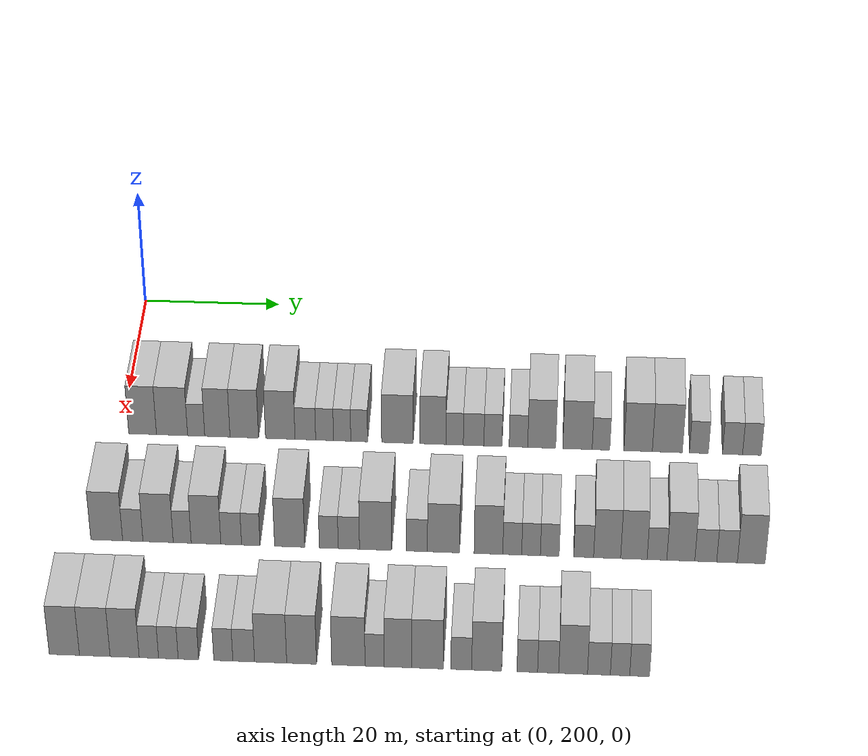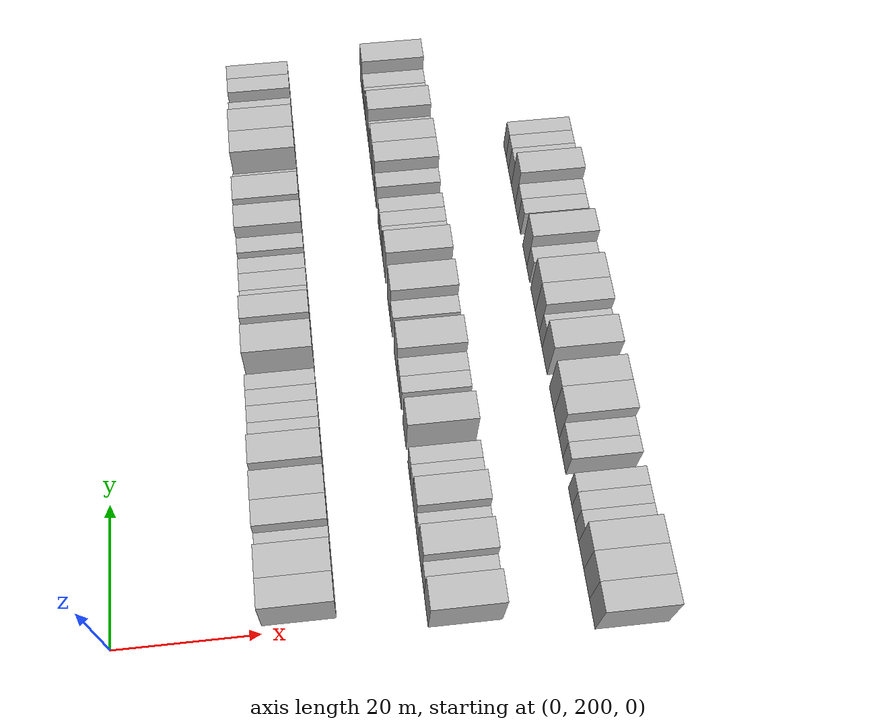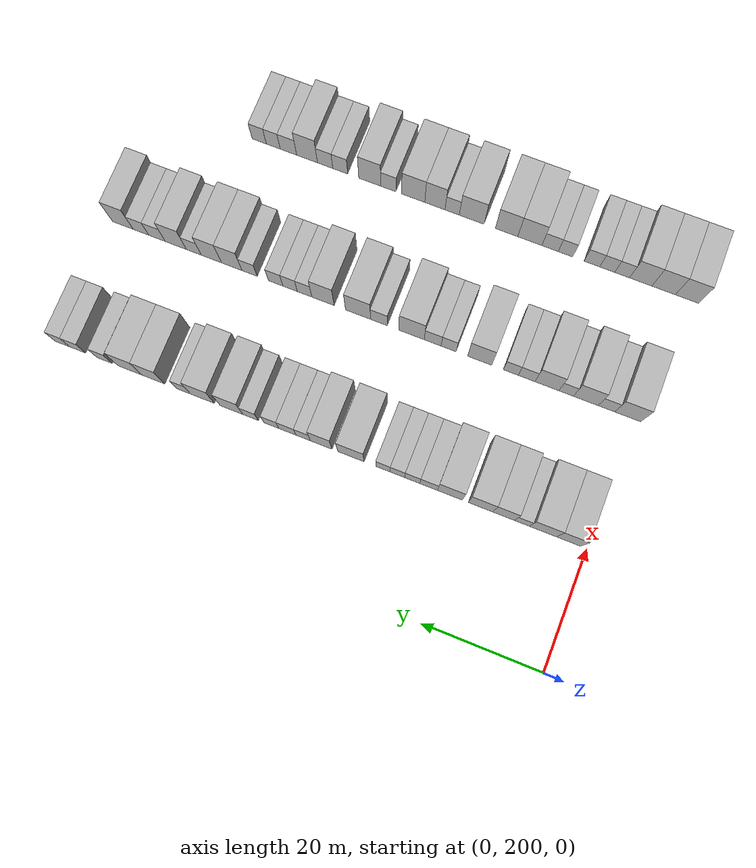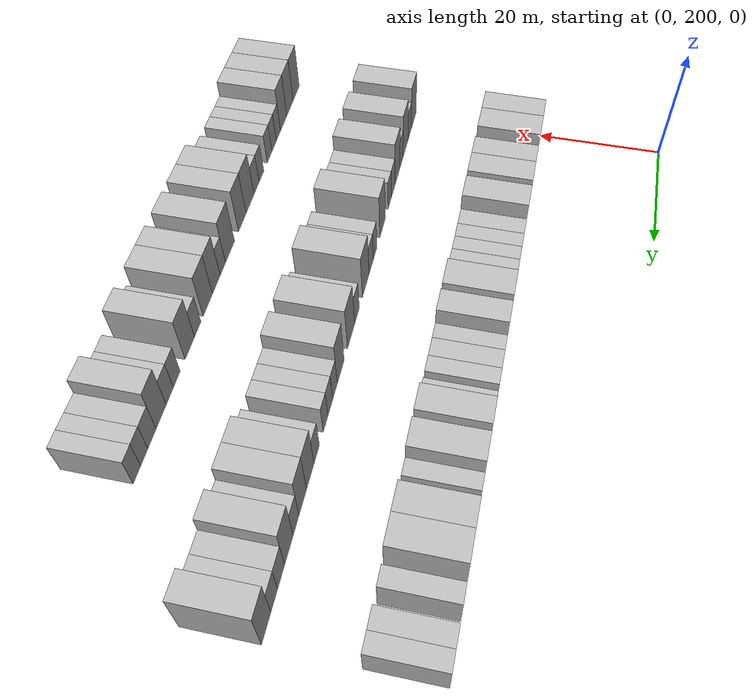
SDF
<sdf version="1.6">
 <world name="default">
  <model name="building_147">
   <static>1</static>
   <pose>25.0000 203.0846 0 0.000000 0.000000 0.000000</pose>
   <link name="link">
    <pose>0 0 4.50 0 0 0</pose>
    <collision name="collision"><geometry><box><size>10.0000 3.9714 9.0000</size></box></geometry></collision>
    <visual name="visual">
     <cast_shadows>0</cast_shadows>
     <geometry><box><size>10.0000 3.9714 9.0000</size></box></geometry>
     <material>
      <script>
       <uri>model://HANNAS_wall/materials/scripts</uri>
       <uri>model://HANNAS_wall/materials/textures</uri>
       <name>vrc/HANNAS_wall</name>
      </script>
     </material>
    </visual>
   </link>
  </model>
  <model name="building_148">
   <static>1</static>
   <pose>25.0000 207.2992 0 0.000000 0.000000 0.000000</pose>
   <link name="link">
    <pose>0 0 4.50 0 0 0</pose>
    <collision name="collision"><geometry><box><size>10.0000 4.4577 9.0000</size></box></geometry></collision>
    <visual name="visual">
     <cast_shadows>0</cast_shadows>
     <geometry><box><size>10.0000 4.4577 9.0000</size></box></geometry>
     <material>
      <script>
       <uri>model://HANNAS_wall/materials/scripts</uri>
       <uri>model://HANNAS_wall/materials/textures</uri>
       <name>vrc/HANNAS_wall</name>
      </script>
     </material>
    </visual>
   </link>
  </model>
  <model name="building_149">
   <static>1</static>
   <pose>25.0000 210.7548 0 0.000000 0.000000 0.000000</pose>
   <link name="link">
    <pose>0 0 3.00 0 0 0</pose>
    <collision name="collision"><geometry><box><size>10.0000 2.4535 6.0000</size></box></geometry></collision>
    <visual name="visual">
     <cast_shadows>0</cast_shadows>
     <geometry><box><size>10.0000 2.4535 6.0000</size></box></geometry>
     <material>
      <script>
       <uri>model://HANNAS_wall/materials/scripts</uri>
       <uri>model://HANNAS_wall/materials/textures</uri>
       <name>vrc/HANNAS_wall</name>
      </script>
     </material>
    </visual>
   </link>
  </model>
  <model name="building_150">
   <static>1</static>
   <pose>25.0000 213.7901 0 0.000000 0.000000 0.000000</pose>
   <link name="link">
    <pose>0 0 4.50 0 0 0</pose>
    <collision name="collision"><geometry><box><size>10.0000 3.6173 9.0000</size></box></geometry></collision>
    <visual name="visual">
     <cast_shadows>0</cast_shadows>
     <geometry><box><size>10.0000 3.6173 9.0000</size></box></geometry>
     <material>
      <script>
       <uri>model://HANNAS_wall/materials/scripts</uri>
       <uri>model://HANNAS_wall/materials/textures</uri>
       <name>vrc/HANNAS_wall</name>
      </script>
     </material>
    </visual>
   </link>
  </model>
  <model name="building_151">
   <static>1</static>
   <pose>25.0000 217.6398 0 0.000000 0.000000 0.000000</pose>
   <link name="link">
    <pose>0 0 4.50 0 0 0</pose>
    <collision name="collision"><geometry><box><size>10.0000 4.0820 9.0000</size></box></geometry></collision>
    <visual name="visual">
     <cast_shadows>0</cast_shadows>
     <geometry><box><size>10.0000 4.0820 9.0000</size></box></geometry>
     <material>
      <script>
       <uri>model://HANNAS_wall/materials/scripts</uri>
       <uri>model://HANNAS_wall/materials/textures</uri>
       <name>vrc/HANNAS_wall</name>
      </script>
     </material>
    </visual>
   </link>
  </model>
  <model name="building_152">
   <static>1</static>
   <pose>25.0000 222.7860 0 0.000000 0.000000 0.000000</pose>
   <link name="link">
    <pose>0 0 4.50 0 0 0</pose>
    <collision name="collision"><geometry><box><size>10.0000 4.2104 9.0000</size></box></geometry></collision>
    <visual name="visual">
     <cast_shadows>0</cast_shadows>
     <geometry><box><size>10.0000 4.2104 9.0000</size></box></geometry>
     <material>
      <script>
       <uri>model://HANNAS_wall/materials/scripts</uri>
       <uri>model://HANNAS_wall/materials/textures</uri>
       <name>vrc/HANNAS_wall</name>
      </script>
     </material>
    </visual>
   </link>
  </model>
  <model name="building_153">
   <static>1</static>
   <pose>25.0000 226.3611 0 0.000000 0.000000 0.000000</pose>
   <link name="link">
    <pose>0 0 3.00 0 0 0</pose>
    <collision name="collision"><geometry><box><size>10.0000 2.9398 6.0000</size></box></geometry></collision>
    <visual name="visual">
     <cast_shadows>0</cast_shadows>
     <geometry><box><size>10.0000 2.9398 6.0000</size></box></geometry>
     <material>
      <script>
       <uri>model://HANNAS_wall/materials/scripts</uri>
       <uri>model://HANNAS_wall/materials/textures</uri>
       <name>vrc/HANNAS_wall</name>
      </script>
     </material>
    </visual>
   </link>
  </model>
  <model name="building_154">
   <static>1</static>
   <pose>25.0000 229.1080 0 0.000000 0.000000 0.000000</pose>
   <link name="link">
    <pose>0 0 3.00 0 0 0</pose>
    <collision name="collision"><geometry><box><size>10.0000 2.5540 6.0000</size></box></geometry></collision>
    <visual name="visual">
     <cast_shadows>0</cast_shadows>
     <geometry><box><size>10.0000 2.5540 6.0000</size></box></geometry>
     <material>
      <script>
       <uri>model://HANNAS_wall/materials/scripts</uri>
       <uri>model://HANNAS_wall/materials/textures</uri>
       <name>vrc/HANNAS_wall</name>
      </script>
     </material>
    </visual>
   </link>
  </model>
  <model name="building_155">
   <static>1</static>
   <pose>25.0000 231.6140 0 0.000000 0.000000 0.000000</pose>
   <link name="link">
    <pose>0 0 3.00 0 0 0</pose>
    <collision name="collision"><geometry><box><size>10.0000 2.4580 6.0000</size></box></geometry></collision>
    <visual name="visual">
     <cast_shadows>0</cast_shadows>
     <geometry><box><size>10.0000 2.4580 6.0000</size></box></geometry>
     <material>
      <script>
       <uri>model://HANNAS_wall/materials/scripts</uri>
       <uri>model://HANNAS_wall/materials/textures</uri>
       <name>vrc/HANNAS_wall</name>
      </script>
     </material>
    </visual>
   </link>
  </model>
  <model name="building_156">
   <static>1</static>
   <pose>25.0000 234.0433 0 0.000000 0.000000 0.000000</pose>
   <link name="link">
    <pose>0 0 3.00 0 0 0</pose>
    <collision name="collision"><geometry><box><size>10.0000 2.4007 6.0000</size></box></geometry></collision>
    <visual name="visual">
     <cast_shadows>0</cast_shadows>
     <geometry><box><size>10.0000 2.4007 6.0000</size></box></geometry>
     <material>
      <script>
       <uri>model://HANNAS_wall/materials/scripts</uri>
       <uri>model://HANNAS_wall/materials/textures</uri>
       <name>vrc/HANNAS_wall</name>
      </script>
     </material>
    </visual>
   </link>
  </model>
  <model name="building_157">
   <static>1</static>
   <pose>25.0000 239.4811 0 0.000000 0.000000 0.000000</pose>
   <link name="link">
    <pose>0 0 4.50 0 0 0</pose>
    <collision name="collision"><geometry><box><size>10.0000 4.4749 9.0000</size></box></geometry></collision>
    <visual name="visual">
     <cast_shadows>0</cast_shadows>
     <geometry><box><size>10.0000 4.4749 9.0000</size></box></geometry>
     <material>
      <script>
       <uri>model://HANNAS_wall/materials/scripts</uri>
       <uri>model://HANNAS_wall/materials/textures</uri>
       <name>vrc/HANNAS_wall</name>
      </script>
     </material>
    </visual>
   </link>
  </model>
  <model name="building_158">
   <static>1</static>
   <pose>25.0000 244.5625 0 0.000000 0.000000 0.000000</pose>
   <link name="link">
    <pose>0 0 4.50 0 0 0</pose>
    <collision name="collision"><geometry><box><size>10.0000 3.6878 9.0000</size></box></geometry></collision>
    <visual name="visual">
     <cast_shadows>0</cast_shadows>
     <geometry><box><size>10.0000 3.6878 9.0000</size></box></geometry>
     <material>
      <script>
       <uri>model://HANNAS_wall/materials/scripts</uri>
       <uri>model://HANNAS_wall/materials/textures</uri>
       <name>vrc/HANNAS_wall</name>
      </script>
     </material>
    </visual>
   </link>
  </model>
  <model name="building_159">
   <static>1</static>
   <pose>25.0000 247.6323 0 0.000000 0.000000 0.000000</pose>
   <link name="link">
    <pose>0 0 3.00 0 0 0</pose>
    <collision name="collision"><geometry><box><size>10.0000 2.4518 6.0000</size></box></geometry></collision>
    <visual name="visual">
     <cast_shadows>0</cast_shadows>
     <geometry><box><size>10.0000 2.4518 6.0000</size></box></geometry>
     <material>
      <script>
       <uri>model://HANNAS_wall/materials/scripts</uri>
       <uri>model://HANNAS_wall/materials/textures</uri>
       <name>vrc/HANNAS_wall</name>
      </script>
     </material>
    </visual>
   </link>
  </model>
  <model name="building_160">
   <static>1</static>
   <pose>25.0000 250.3275 0 0.000000 0.000000 0.000000</pose>
   <link name="link">
    <pose>0 0 3.00 0 0 0</pose>
    <collision name="collision"><geometry><box><size>10.0000 2.9387 6.0000</size></box></geometry></collision>
    <visual name="visual">
     <cast_shadows>0</cast_shadows>
     <geometry><box><size>10.0000 2.9387 6.0000</size></box></geometry>
     <material>
      <script>
       <uri>model://HANNAS_wall/materials/scripts</uri>
       <uri>model://HANNAS_wall/materials/textures</uri>
       <name>vrc/HANNAS_wall</name>
      </script>
     </material>
    </visual>
   </link>
  </model>
  <model name="building_161">
   <static>1</static>
   <pose>25.0000 253.0840 0 0.000000 0.000000 0.000000</pose>
   <link name="link">
    <pose>0 0 3.00 0 0 0</pose>
    <collision name="collision"><geometry><box><size>10.0000 2.5742 6.0000</size></box></geometry></collision>
    <visual name="visual">
     <cast_shadows>0</cast_shadows>
     <geometry><box><size>10.0000 2.5742 6.0000</size></box></geometry>
     <material>
      <script>
       <uri>model://HANNAS_wall/materials/scripts</uri>
       <uri>model://HANNAS_wall/materials/textures</uri>
       <name>vrc/HANNAS_wall</name>
      </script>
     </material>
    </visual>
   </link>
  </model>
  <model name="building_162">
   <static>1</static>
   <pose>25.0000 256.6863 0 0.000000 0.000000 0.000000</pose>
   <link name="link">
    <pose>0 0 3.00 0 0 0</pose>
    <collision name="collision"><geometry><box><size>10.0000 2.6304 6.0000</size></box></geometry></collision>
    <visual name="visual">
     <cast_shadows>0</cast_shadows>
     <geometry><box><size>10.0000 2.6304 6.0000</size></box></geometry>
     <material>
      <script>
       <uri>model://HANNAS_wall/materials/scripts</uri>
       <uri>model://HANNAS_wall/materials/textures</uri>
       <name>vrc/HANNAS_wall</name>
      </script>
     </material>
    </visual>
   </link>
  </model>
  <model name="building_163">
   <static>1</static>
   <pose>25.0000 259.9895 0 0.000000 0.000000 0.000000</pose>
   <link name="link">
    <pose>0 0 4.50 0 0 0</pose>
    <collision name="collision"><geometry><box><size>10.0000 3.9760 9.0000</size></box></geometry></collision>
    <visual name="visual">
     <cast_shadows>0</cast_shadows>
     <geometry><box><size>10.0000 3.9760 9.0000</size></box></geometry>
     <material>
      <script>
       <uri>model://HANNAS_wall/materials/scripts</uri>
       <uri>model://HANNAS_wall/materials/textures</uri>
       <name>vrc/HANNAS_wall</name>
      </script>
     </material>
    </visual>
   </link>
  </model>
  <model name="building_164">
   <static>1</static>
   <pose>25.0000 265.0627 0 0.000000 0.000000 0.000000</pose>
   <link name="link">
    <pose>0 0 4.50 0 0 0</pose>
    <collision name="collision"><geometry><box><size>10.0000 4.1704 9.0000</size></box></geometry></collision>
    <visual name="visual">
     <cast_shadows>0</cast_shadows>
     <geometry><box><size>10.0000 4.1704 9.0000</size></box></geometry>
     <material>
      <script>
       <uri>model://HANNAS_wall/materials/scripts</uri>
       <uri>model://HANNAS_wall/materials/textures</uri>
       <name>vrc/HANNAS_wall</name>
      </script>
     </material>
    </visual>
   </link>
  </model>
  <model name="building_165">
   <static>1</static>
   <pose>25.0000 268.3961 0 0.000000 0.000000 0.000000</pose>
   <link name="link">
    <pose>0 0 3.00 0 0 0</pose>
    <collision name="collision"><geometry><box><size>10.0000 2.4966 6.0000</size></box></geometry></collision>
    <visual name="visual">
     <cast_shadows>0</cast_shadows>
     <geometry><box><size>10.0000 2.4966 6.0000</size></box></geometry>
     <material>
      <script>
       <uri>model://HANNAS_wall/materials/scripts</uri>
       <uri>model://HANNAS_wall/materials/textures</uri>
       <name>vrc/HANNAS_wall</name>
      </script>
     </material>
    </visual>
   </link>
  </model>
  <model name="building_166">
   <static>1</static>
   <pose>25.0000 273.6552 0 0.000000 0.000000 0.000000</pose>
   <link name="link">
    <pose>0 0 4.50 0 0 0</pose>
    <collision name="collision"><geometry><box><size>10.0000 4.0216 9.0000</size></box></geometry></collision>
    <visual name="visual">
     <cast_shadows>0</cast_shadows>
     <geometry><box><size>10.0000 4.0216 9.0000</size></box></geometry>
     <material>
      <script>
       <uri>model://HANNAS_wall/materials/scripts</uri>
       <uri>model://HANNAS_wall/materials/textures</uri>
       <name>vrc/HANNAS_wall</name>
      </script>
     </material>
    </visual>
   </link>
  </model>
  <model name="building_167">
   <static>1</static>
   <pose>25.0000 277.7894 0 0.000000 0.000000 0.000000</pose>
   <link name="link">
    <pose>0 0 4.50 0 0 0</pose>
    <collision name="collision"><geometry><box><size>10.0000 4.2468 9.0000</size></box></geometry></collision>
    <visual name="visual">
     <cast_shadows>0</cast_shadows>
     <geometry><box><size>10.0000 4.2468 9.0000</size></box></geometry>
     <material>
      <script>
       <uri>model://HANNAS_wall/materials/scripts</uri>
       <uri>model://HANNAS_wall/materials/textures</uri>
       <name>vrc/HANNAS_wall</name>
      </script>
     </material>
    </visual>
   </link>
  </model>
  <model name="building_168">
   <static>1</static>
   <pose>25.0000 282.2479 0 0.000000 0.000000 0.000000</pose>
   <link name="link">
    <pose>0 0 3.00 0 0 0</pose>
    <collision name="collision"><geometry><box><size>10.0000 2.6702 6.0000</size></box></geometry></collision>
    <visual name="visual">
     <cast_shadows>0</cast_shadows>
     <geometry><box><size>10.0000 2.6702 6.0000</size></box></geometry>
     <material>
      <script>
       <uri>model://HANNAS_wall/materials/scripts</uri>
       <uri>model://HANNAS_wall/materials/textures</uri>
       <name>vrc/HANNAS_wall</name>
      </script>
     </material>
    </visual>
   </link>
  </model>
  <model name="building_169">
   <static>1</static>
   <pose>25.0000 287.0007 0 0.000000 0.000000 0.000000</pose>
   <link name="link">
    <pose>0 0 3.00 0 0 0</pose>
    <collision name="collision"><geometry><box><size>10.0000 2.8354 6.0000</size></box></geometry></collision>
    <visual name="visual">
     <cast_shadows>0</cast_shadows>
     <geometry><box><size>10.0000 2.8354 6.0000</size></box></geometry>
     <material>
      <script>
       <uri>model://HANNAS_wall/materials/scripts</uri>
       <uri>model://HANNAS_wall/materials/textures</uri>
       <name>vrc/HANNAS_wall</name>
      </script>
     </material>
    </visual>
   </link>
  </model>
  <model name="building_170">
   <static>1</static>
   <pose>25.0000 289.7373 0 0.000000 0.000000 0.000000</pose>
   <link name="link">
    <pose>0 0 3.00 0 0 0</pose>
    <collision name="collision"><geometry><box><size>10.0000 2.6378 6.0000</size></box></geometry></collision>
    <visual name="visual">
     <cast_shadows>0</cast_shadows>
     <geometry><box><size>10.0000 2.6378 6.0000</size></box></geometry>
     <material>
      <script>
       <uri>model://HANNAS_wall/materials/scripts</uri>
       <uri>model://HANNAS_wall/materials/textures</uri>
       <name>vrc/HANNAS_wall</name>
      </script>
     </material>
    </visual>
   </link>
  </model>
  <model name="building_337">
   <static>1</static>
   <pose>47.0000 200.7779 0 0.000000 0.000000 0.000000</pose>
   <link name="link">
    <pose>0 0 4.50 0 0 0</pose>
    <collision name="collision"><geometry><box><size>10.0000 4.3853 9.0000</size></box></geometry></collision>
    <visual name="visual">
     <cast_shadows>0</cast_shadows>
     <geometry><box><size>10.0000 4.3853 9.0000</size></box></geometry>
     <material>
      <script>
       <uri>model://HANNAS_wall/materials/scripts</uri>
       <uri>model://HANNAS_wall/materials/textures</uri>
       <name>vrc/HANNAS_wall</name>
      </script>
     </material>
    </visual>
   </link>
  </model>
  <model name="building_338">
   <static>1</static>
   <pose>47.0000 204.3714 0 0.000000 0.000000 0.000000</pose>
   <link name="link">
    <pose>0 0 3.00 0 0 0</pose>
    <collision name="collision"><geometry><box><size>10.0000 2.8018 6.0000</size></box></geometry></collision>
    <visual name="visual">
     <cast_shadows>0</cast_shadows>
     <geometry><box><size>10.0000 2.8018 6.0000</size></box></geometry>
     <material>
      <script>
       <uri>model://HANNAS_wall/materials/scripts</uri>
       <uri>model://HANNAS_wall/materials/textures</uri>
       <name>vrc/HANNAS_wall</name>
      </script>
     </material>
    </visual>
   </link>
  </model>
  <model name="building_339">
   <static>1</static>
   <pose>47.0000 207.8589 0 0.000000 0.000000 0.000000</pose>
   <link name="link">
    <pose>0 0 4.50 0 0 0</pose>
    <collision name="collision"><geometry><box><size>10.0000 4.1732 9.0000</size></box></geometry></collision>
    <visual name="visual">
     <cast_shadows>0</cast_shadows>
     <geometry><box><size>10.0000 4.1732 9.0000</size></box></geometry>
     <material>
      <script>
       <uri>model://HANNAS_wall/materials/scripts</uri>
       <uri>model://HANNAS_wall/materials/textures</uri>
       <name>vrc/HANNAS_wall</name>
      </script>
     </material>
    </visual>
   </link>
  </model>
  <model name="building_340">
   <static>1</static>
   <pose>47.0000 211.1857 0 0.000000 0.000000 0.000000</pose>
   <link name="link">
    <pose>0 0 3.00 0 0 0</pose>
    <collision name="collision"><geometry><box><size>10.0000 2.4803 6.0000</size></box></geometry></collision>
    <visual name="visual">
     <cast_shadows>0</cast_shadows>
     <geometry><box><size>10.0000 2.4803 6.0000</size></box></geometry>
     <material>
      <script>
       <uri>model://HANNAS_wall/materials/scripts</uri>
       <uri>model://HANNAS_wall/materials/textures</uri>
       <name>vrc/HANNAS_wall</name>
      </script>
     </material>
    </visual>
   </link>
  </model>
  <model name="building_341">
   <static>1</static>
   <pose>47.0000 214.4645 0 0.000000 0.000000 0.000000</pose>
   <link name="link">
    <pose>0 0 4.50 0 0 0</pose>
    <collision name="collision"><geometry><box><size>10.0000 4.0774 9.0000</size></box></geometry></collision>
    <visual name="visual">
     <cast_shadows>0</cast_shadows>
     <geometry><box><size>10.0000 4.0774 9.0000</size></box></geometry>
     <material>
      <script>
       <uri>model://HANNAS_wall/materials/scripts</uri>
       <uri>model://HANNAS_wall/materials/textures</uri>
       <name>vrc/HANNAS_wall</name>
      </script>
     </material>
    </visual>
   </link>
  </model>
  <model name="building_342">
   <static>1</static>
   <pose>47.0000 217.9255 0 0.000000 0.000000 0.000000</pose>
   <link name="link">
    <pose>0 0 3.00 0 0 0</pose>
    <collision name="collision"><geometry><box><size>10.0000 2.8446 6.0000</size></box></geometry></collision>
    <visual name="visual">
     <cast_shadows>0</cast_shadows>
     <geometry><box><size>10.0000 2.8446 6.0000</size></box></geometry>
     <material>
      <script>
       <uri>model://HANNAS_wall/materials/scripts</uri>
       <uri>model://HANNAS_wall/materials/textures</uri>
       <name>vrc/HANNAS_wall</name>
      </script>
     </material>
    </visual>
   </link>
  </model>
  <model name="building_343">
   <static>1</static>
   <pose>47.0000 220.6190 0 0.000000 0.000000 0.000000</pose>
   <link name="link">
    <pose>0 0 3.00 0 0 0</pose>
    <collision name="collision"><geometry><box><size>10.0000 2.5425 6.0000</size></box></geometry></collision>
    <visual name="visual">
     <cast_shadows>0</cast_shadows>
     <geometry><box><size>10.0000 2.5425 6.0000</size></box></geometry>
     <material>
      <script>
       <uri>model://HANNAS_wall/materials/scripts</uri>
       <uri>model://HANNAS_wall/materials/textures</uri>
       <name>vrc/HANNAS_wall</name>
      </script>
     </material>
    </visual>
   </link>
  </model>
  <model name="building_344">
   <static>1</static>
   <pose>47.0000 225.9613 0 0.000000 0.000000 0.000000</pose>
   <link name="link">
    <pose>0 0 4.50 0 0 0</pose>
    <collision name="collision"><geometry><box><size>10.0000 4.1420 9.0000</size></box></geometry></collision>
    <visual name="visual">
     <cast_shadows>0</cast_shadows>
     <geometry><box><size>10.0000 4.1420 9.0000</size></box></geometry>
     <material>
      <script>
       <uri>model://HANNAS_wall/materials/scripts</uri>
       <uri>model://HANNAS_wall/materials/textures</uri>
       <name>vrc/HANNAS_wall</name>
      </script>
     </material>
    </visual>
   </link>
  </model>
  <model name="building_345">
   <static>1</static>
   <pose>47.0000 231.3283 0 0.000000 0.000000 0.000000</pose>
   <link name="link">
    <pose>0 0 3.00 0 0 0</pose>
    <collision name="collision"><geometry><box><size>10.0000 2.5920 6.0000</size></box></geometry></collision>
    <visual name="visual">
     <cast_shadows>0</cast_shadows>
     <geometry><box><size>10.0000 2.5920 6.0000</size></box></geometry>
     <material>
      <script>
       <uri>model://HANNAS_wall/materials/scripts</uri>
       <uri>model://HANNAS_wall/materials/textures</uri>
       <name>vrc/HANNAS_wall</name>
      </script>
     </material>
    </visual>
   </link>
  </model>
  <model name="building_346">
   <static>1</static>
   <pose>47.0000 234.0823 0 0.000000 0.000000 0.000000</pose>
   <link name="link">
    <pose>0 0 3.00 0 0 0</pose>
    <collision name="collision"><geometry><box><size>10.0000 2.9159 6.0000</size></box></geometry></collision>
    <visual name="visual">
     <cast_shadows>0</cast_shadows>
     <geometry><box><size>10.0000 2.9159 6.0000</size></box></geometry>
     <material>
      <script>
       <uri>model://HANNAS_wall/materials/scripts</uri>
       <uri>model://HANNAS_wall/materials/textures</uri>
       <name>vrc/HANNAS_wall</name>
      </script>
     </material>
    </visual>
   </link>
  </model>
  <model name="building_347">
   <static>1</static>
   <pose>47.0000 237.7446 0 0.000000 0.000000 0.000000</pose>
   <link name="link">
    <pose>0 0 4.50 0 0 0</pose>
    <collision name="collision"><geometry><box><size>10.0000 4.4086 9.0000</size></box></geometry></collision>
    <visual name="visual">
     <cast_shadows>0</cast_shadows>
     <geometry><box><size>10.0000 4.4086 9.0000</size></box></geometry>
     <material>
      <script>
       <uri>model://HANNAS_wall/materials/scripts</uri>
       <uri>model://HANNAS_wall/materials/textures</uri>
       <name>vrc/HANNAS_wall</name>
      </script>
     </material>
    </visual>
   </link>
  </model>
  <model name="building_348">
   <static>1</static>
   <pose>47.0000 243.4023 0 0.000000 0.000000 0.000000</pose>
   <link name="link">
    <pose>0 0 3.00 0 0 0</pose>
    <collision name="collision"><geometry><box><size>10.0000 2.9069 6.0000</size></box></geometry></collision>
    <visual name="visual">
     <cast_shadows>0</cast_shadows>
     <geometry><box><size>10.0000 2.9069 6.0000</size></box></geometry>
     <material>
      <script>
       <uri>model://HANNAS_wall/materials/scripts</uri>
       <uri>model://HANNAS_wall/materials/textures</uri>
       <name>vrc/HANNAS_wall</name>
      </script>
     </material>
    </visual>
   </link>
  </model>
  <model name="building_349">
   <static>1</static>
   <pose>47.0000 247.0466 0 0.000000 0.000000 0.000000</pose>
   <link name="link">
    <pose>0 0 4.50 0 0 0</pose>
    <collision name="collision"><geometry><box><size>10.0000 4.3817 9.0000</size></box></geometry></collision>
    <visual name="visual">
     <cast_shadows>0</cast_shadows>
     <geometry><box><size>10.0000 4.3817 9.0000</size></box></geometry>
     <material>
      <script>
       <uri>model://HANNAS_wall/materials/scripts</uri>
       <uri>model://HANNAS_wall/materials/textures</uri>
       <name>vrc/HANNAS_wall</name>
      </script>
     </material>
    </visual>
   </link>
  </model>
  <model name="building_350">
   <static>1</static>
   <pose>47.0000 253.1952 0 0.000000 0.000000 0.000000</pose>
   <link name="link">
    <pose>0 0 4.50 0 0 0</pose>
    <collision name="collision"><geometry><box><size>10.0000 3.9155 9.0000</size></box></geometry></collision>
    <visual name="visual">
     <cast_shadows>0</cast_shadows>
     <geometry><box><size>10.0000 3.9155 9.0000</size></box></geometry>
     <material>
      <script>
       <uri>model://HANNAS_wall/materials/scripts</uri>
       <uri>model://HANNAS_wall/materials/textures</uri>
       <name>vrc/HANNAS_wall</name>
      </script>
     </material>
    </visual>
   </link>
  </model>
  <model name="building_351">
   <static>1</static>
   <pose>47.0000 256.4417 0 0.000000 0.000000 0.000000</pose>
   <link name="link">
    <pose>0 0 3.00 0 0 0</pose>
    <collision name="collision"><geometry><box><size>10.0000 2.5774 6.0000</size></box></geometry></collision>
    <visual name="visual">
     <cast_shadows>0</cast_shadows>
     <geometry><box><size>10.0000 2.5774 6.0000</size></box></geometry>
     <material>
      <script>
       <uri>model://HANNAS_wall/materials/scripts</uri>
       <uri>model://HANNAS_wall/materials/textures</uri>
       <name>vrc/HANNAS_wall</name>
      </script>
     </material>
    </visual>
   </link>
  </model>
  <model name="building_352">
   <static>1</static>
   <pose>47.0000 259.0046 0 0.000000 0.000000 0.000000</pose>
   <link name="link">
    <pose>0 0 3.00 0 0 0</pose>
    <collision name="collision"><geometry><box><size>10.0000 2.5483 6.0000</size></box></geometry></collision>
    <visual name="visual">
     <cast_shadows>0</cast_shadows>
     <geometry><box><size>10.0000 2.5483 6.0000</size></box></geometry>
     <material>
      <script>
       <uri>model://HANNAS_wall/materials/scripts</uri>
       <uri>model://HANNAS_wall/materials/textures</uri>
       <name>vrc/HANNAS_wall</name>
      </script>
     </material>
    </visual>
   </link>
  </model>
  <model name="building_353">
   <static>1</static>
   <pose>47.0000 261.5586 0 0.000000 0.000000 0.000000</pose>
   <link name="link">
    <pose>0 0 3.00 0 0 0</pose>
    <collision name="collision"><geometry><box><size>10.0000 2.5597 6.0000</size></box></geometry></collision>
    <visual name="visual">
     <cast_shadows>0</cast_shadows>
     <geometry><box><size>10.0000 2.5597 6.0000</size></box></geometry>
     <material>
      <script>
       <uri>model://HANNAS_wall/materials/scripts</uri>
       <uri>model://HANNAS_wall/materials/textures</uri>
       <name>vrc/HANNAS_wall</name>
      </script>
     </material>
    </visual>
   </link>
  </model>
  <model name="building_354">
   <static>1</static>
   <pose>47.0000 266.1896 0 0.000000 0.000000 0.000000</pose>
   <link name="link">
    <pose>0 0 3.00 0 0 0</pose>
    <collision name="collision"><geometry><box><size>10.0000 2.7025 6.0000</size></box></geometry></collision>
    <visual name="visual">
     <cast_shadows>0</cast_shadows>
     <geometry><box><size>10.0000 2.7025 6.0000</size></box></geometry>
     <material>
      <script>
       <uri>model://HANNAS_wall/materials/scripts</uri>
       <uri>model://HANNAS_wall/materials/textures</uri>
       <name>vrc/HANNAS_wall</name>
      </script>
     </material>
    </visual>
   </link>
  </model>
  <model name="building_355">
   <static>1</static>
   <pose>47.0000 269.3823 0 0.000000 0.000000 0.000000</pose>
   <link name="link">
    <pose>0 0 4.50 0 0 0</pose>
    <collision name="collision"><geometry><box><size>10.0000 3.6828 9.0000</size></box></geometry></collision>
    <visual name="visual">
     <cast_shadows>0</cast_shadows>
     <geometry><box><size>10.0000 3.6828 9.0000</size></box></geometry>
     <material>
      <script>
       <uri>model://HANNAS_wall/materials/scripts</uri>
       <uri>model://HANNAS_wall/materials/textures</uri>
       <name>vrc/HANNAS_wall</name>
      </script>
     </material>
    </visual>
   </link>
  </model>
  <model name="building_356">
   <static>1</static>
   <pose>47.0000 273.0267 0 0.000000 0.000000 0.000000</pose>
   <link name="link">
    <pose>0 0 4.50 0 0 0</pose>
    <collision name="collision"><geometry><box><size>10.0000 3.6061 9.0000</size></box></geometry></collision>
    <visual name="visual">
     <cast_shadows>0</cast_shadows>
     <geometry><box><size>10.0000 3.6061 9.0000</size></box></geometry>
     <material>
      <script>
       <uri>model://HANNAS_wall/materials/scripts</uri>
       <uri>model://HANNAS_wall/materials/textures</uri>
       <name>vrc/HANNAS_wall</name>
      </script>
     </material>
    </visual>
   </link>
  </model>
  <model name="building_357">
   <static>1</static>
   <pose>47.0000 276.1717 0 0.000000 0.000000 0.000000</pose>
   <link name="link">
    <pose>0 0 3.00 0 0 0</pose>
    <collision name="collision"><geometry><box><size>10.0000 2.6840 6.0000</size></box></geometry></collision>
    <visual name="visual">
     <cast_shadows>0</cast_shadows>
     <geometry><box><size>10.0000 2.6840 6.0000</size></box></geometry>
     <material>
      <script>
       <uri>model://HANNAS_wall/materials/scripts</uri>
       <uri>model://HANNAS_wall/materials/textures</uri>
       <name>vrc/HANNAS_wall</name>
      </script>
     </material>
    </visual>
   </link>
  </model>
  <model name="building_358">
   <static>1</static>
   <pose>47.0000 279.4153 0 0.000000 0.000000 0.000000</pose>
   <link name="link">
    <pose>0 0 4.50 0 0 0</pose>
    <collision name="collision"><geometry><box><size>10.0000 3.8031 9.0000</size></box></geometry></collision>
    <visual name="visual">
     <cast_shadows>0</cast_shadows>
     <geometry><box><size>10.0000 3.8031 9.0000</size></box></geometry>
     <material>
      <script>
       <uri>model://HANNAS_wall/materials/scripts</uri>
       <uri>model://HANNAS_wall/materials/textures</uri>
       <name>vrc/HANNAS_wall</name>
      </script>
     </material>
    </visual>
   </link>
  </model>
  <model name="building_359">
   <static>1</static>
   <pose>47.0000 282.8066 0 0.000000 0.000000 0.000000</pose>
   <link name="link">
    <pose>0 0 3.00 0 0 0</pose>
    <collision name="collision"><geometry><box><size>10.0000 2.9795 6.0000</size></box></geometry></collision>
    <visual name="visual">
     <cast_shadows>0</cast_shadows>
     <geometry><box><size>10.0000 2.9795 6.0000</size></box></geometry>
     <material>
      <script>
       <uri>model://HANNAS_wall/materials/scripts</uri>
       <uri>model://HANNAS_wall/materials/textures</uri>
       <name>vrc/HANNAS_wall</name>
      </script>
     </material>
    </visual>
   </link>
  </model>
  <model name="building_360">
   <static>1</static>
   <pose>47.0000 285.7001 0 0.000000 0.000000 0.000000</pose>
   <link name="link">
    <pose>0 0 3.00 0 0 0</pose>
    <collision name="collision"><geometry><box><size>10.0000 2.8076 6.0000</size></box></geometry></collision>
    <visual name="visual">
     <cast_shadows>0</cast_shadows>
     <geometry><box><size>10.0000 2.8076 6.0000</size></box></geometry>
     <material>
      <script>
       <uri>model://HANNAS_wall/materials/scripts</uri>
       <uri>model://HANNAS_wall/materials/textures</uri>
       <name>vrc/HANNAS_wall</name>
      </script>
     </material>
    </visual>
   </link>
  </model>
  <model name="building_361">
   <static>1</static>
   <pose>47.0000 288.9809 0 0.000000 0.000000 0.000000</pose>
   <link name="link">
    <pose>0 0 4.50 0 0 0</pose>
    <collision name="collision"><geometry><box><size>10.0000 3.7538 9.0000</size></box></geometry></collision>
    <visual name="visual">
     <cast_shadows>0</cast_shadows>
     <geometry><box><size>10.0000 3.7538 9.0000</size></box></geometry>
     <material>
      <script>
       <uri>model://HANNAS_wall/materials/scripts</uri>
       <uri>model://HANNAS_wall/materials/textures</uri>
       <name>vrc/HANNAS_wall</name>
      </script>
     </material>
    </visual>
   </link>
  </model>
  <model name="building_518">
   <static>1</static>
   <pose>69.0000 197.9984 0 0.000000 0.000000 0.000000</pose>
   <link name="link">
    <pose>0 0 4.50 0 0 0</pose>
    <collision name="collision"><geometry><box><size>10.0000 4.0055 9.0000</size></box></geometry></collision>
    <visual name="visual">
     <cast_shadows>0</cast_shadows>
     <geometry><box><size>10.0000 4.0055 9.0000</size></box></geometry>
     <material>
      <script>
       <uri>model://HANNAS_wall/materials/scripts</uri>
       <uri>model://HANNAS_wall/materials/textures</uri>
       <name>vrc/HANNAS_wall</name>
      </script>
     </material>
    </visual>
   </link>
  </model>
  <model name="building_519">
   <static>1</static>
   <pose>69.0000 202.0286 0 0.000000 0.000000 0.000000</pose>
   <link name="link">
    <pose>0 0 4.50 0 0 0</pose>
    <collision name="collision"><geometry><box><size>10.0000 4.0547 9.0000</size></box></geometry></collision>
    <visual name="visual">
     <cast_shadows>0</cast_shadows>
     <geometry><box><size>10.0000 4.0547 9.0000</size></box></geometry>
     <material>
      <script>
       <uri>model://HANNAS_wall/materials/scripts</uri>
       <uri>model://HANNAS_wall/materials/textures</uri>
       <name>vrc/HANNAS_wall</name>
      </script>
     </material>
    </visual>
   </link>
  </model>
  <model name="building_520">
   <static>1</static>
   <pose>69.0000 205.9842 0 0.000000 0.000000 0.000000</pose>
   <link name="link">
    <pose>0 0 4.50 0 0 0</pose>
    <collision name="collision"><geometry><box><size>10.0000 3.8566 9.0000</size></box></geometry></collision>
    <visual name="visual">
     <cast_shadows>0</cast_shadows>
     <geometry><box><size>10.0000 3.8566 9.0000</size></box></geometry>
     <material>
      <script>
       <uri>model://HANNAS_wall/materials/scripts</uri>
       <uri>model://HANNAS_wall/materials/textures</uri>
       <name>vrc/HANNAS_wall</name>
      </script>
     </material>
    </visual>
   </link>
  </model>
  <model name="building_521">
   <static>1</static>
   <pose>69.0000 209.1967 0 0.000000 0.000000 0.000000</pose>
   <link name="link">
    <pose>0 0 3.00 0 0 0</pose>
    <collision name="collision"><geometry><box><size>10.0000 2.5683 6.0000</size></box></geometry></collision>
    <visual name="visual">
     <cast_shadows>0</cast_shadows>
     <geometry><box><size>10.0000 2.5683 6.0000</size></box></geometry>
     <material>
      <script>
       <uri>model://HANNAS_wall/materials/scripts</uri>
       <uri>model://HANNAS_wall/materials/textures</uri>
       <name>vrc/HANNAS_wall</name>
      </script>
     </material>
    </visual>
   </link>
  </model>
  <model name="building_522">
   <static>1</static>
   <pose>69.0000 211.7778 0 0.000000 0.000000 0.000000</pose>
   <link name="link">
    <pose>0 0 3.00 0 0 0</pose>
    <collision name="collision"><geometry><box><size>10.0000 2.5939 6.0000</size></box></geometry></collision>
    <visual name="visual">
     <cast_shadows>0</cast_shadows>
     <geometry><box><size>10.0000 2.5939 6.0000</size></box></geometry>
     <material>
      <script>
       <uri>model://HANNAS_wall/materials/scripts</uri>
       <uri>model://HANNAS_wall/materials/textures</uri>
       <name>vrc/HANNAS_wall</name>
      </script>
     </material>
    </visual>
   </link>
  </model>
  <model name="building_523">
   <static>1</static>
   <pose>69.0000 214.4290 0 0.000000 0.000000 0.000000</pose>
   <link name="link">
    <pose>0 0 3.00 0 0 0</pose>
    <collision name="collision"><geometry><box><size>10.0000 2.7084 6.0000</size></box></geometry></collision>
    <visual name="visual">
     <cast_shadows>0</cast_shadows>
     <geometry><box><size>10.0000 2.7084 6.0000</size></box></geometry>
     <material>
      <script>
       <uri>model://HANNAS_wall/materials/scripts</uri>
       <uri>model://HANNAS_wall/materials/textures</uri>
       <name>vrc/HANNAS_wall</name>
      </script>
     </material>
    </visual>
   </link>
  </model>
  <model name="building_524">
   <static>1</static>
   <pose>69.0000 219.0426 0 0.000000 0.000000 0.000000</pose>
   <link name="link">
    <pose>0 0 3.00 0 0 0</pose>
    <collision name="collision"><geometry><box><size>10.0000 2.5187 6.0000</size></box></geometry></collision>
    <visual name="visual">
     <cast_shadows>0</cast_shadows>
     <geometry><box><size>10.0000 2.5187 6.0000</size></box></geometry>
     <material>
      <script>
       <uri>model://HANNAS_wall/materials/scripts</uri>
       <uri>model://HANNAS_wall/materials/textures</uri>
       <name>vrc/HANNAS_wall</name>
      </script>
     </material>
    </visual>
   </link>
  </model>
  <model name="building_525">
   <static>1</static>
   <pose>69.0000 221.7327 0 0.000000 0.000000 0.000000</pose>
   <link name="link">
    <pose>0 0 3.00 0 0 0</pose>
    <collision name="collision"><geometry><box><size>10.0000 2.8615 6.0000</size></box></geometry></collision>
    <visual name="visual">
     <cast_shadows>0</cast_shadows>
     <geometry><box><size>10.0000 2.8615 6.0000</size></box></geometry>
     <material>
      <script>
       <uri>model://HANNAS_wall/materials/scripts</uri>
       <uri>model://HANNAS_wall/materials/textures</uri>
       <name>vrc/HANNAS_wall</name>
      </script>
     </material>
    </visual>
   </link>
  </model>
  <model name="building_526">
   <static>1</static>
   <pose>69.0000 225.2839 0 0.000000 0.000000 0.000000</pose>
   <link name="link">
    <pose>0 0 4.50 0 0 0</pose>
    <collision name="collision"><geometry><box><size>10.0000 4.2408 9.0000</size></box></geometry></collision>
    <visual name="visual">
     <cast_shadows>0</cast_shadows>
     <geometry><box><size>10.0000 4.2408 9.0000</size></box></geometry>
     <material>
      <script>
       <uri>model://HANNAS_wall/materials/scripts</uri>
       <uri>model://HANNAS_wall/materials/textures</uri>
       <name>vrc/HANNAS_wall</name>
      </script>
     </material>
    </visual>
   </link>
  </model>
  <model name="building_527">
   <static>1</static>
   <pose>69.0000 229.3708 0 0.000000 0.000000 0.000000</pose>
   <link name="link">
    <pose>0 0 4.50 0 0 0</pose>
    <collision name="collision"><geometry><box><size>10.0000 3.9329 9.0000</size></box></geometry></collision>
    <visual name="visual">
     <cast_shadows>0</cast_shadows>
     <geometry><box><size>10.0000 3.9329 9.0000</size></box></geometry>
     <material>
      <script>
       <uri>model://HANNAS_wall/materials/scripts</uri>
       <uri>model://HANNAS_wall/materials/textures</uri>
       <name>vrc/HANNAS_wall</name>
      </script>
     </material>
    </visual>
   </link>
  </model>
  <model name="building_528">
   <static>1</static>
   <pose>69.0000 235.5341 0 0.000000 0.000000 0.000000</pose>
   <link name="link">
    <pose>0 0 4.50 0 0 0</pose>
    <collision name="collision"><geometry><box><size>10.0000 4.3937 9.0000</size></box></geometry></collision>
    <visual name="visual">
     <cast_shadows>0</cast_shadows>
     <geometry><box><size>10.0000 4.3937 9.0000</size></box></geometry>
     <material>
      <script>
       <uri>model://HANNAS_wall/materials/scripts</uri>
       <uri>model://HANNAS_wall/materials/textures</uri>
       <name>vrc/HANNAS_wall</name>
      </script>
     </material>
    </visual>
   </link>
  </model>
  <model name="building_529">
   <static>1</static>
   <pose>69.0000 238.9964 0 0.000000 0.000000 0.000000</pose>
   <link name="link">
    <pose>0 0 3.00 0 0 0</pose>
    <collision name="collision"><geometry><box><size>10.0000 2.5309 6.0000</size></box></geometry></collision>
    <visual name="visual">
     <cast_shadows>0</cast_shadows>
     <geometry><box><size>10.0000 2.5309 6.0000</size></box></geometry>
     <material>
      <script>
       <uri>model://HANNAS_wall/materials/scripts</uri>
       <uri>model://HANNAS_wall/materials/textures</uri>
       <name>vrc/HANNAS_wall</name>
      </script>
     </material>
    </visual>
   </link>
  </model>
  <model name="building_530">
   <static>1</static>
   <pose>69.0000 242.0649 0 0.000000 0.000000 0.000000</pose>
   <link name="link">
    <pose>0 0 4.50 0 0 0</pose>
    <collision name="collision"><geometry><box><size>10.0000 3.6062 9.0000</size></box></geometry></collision>
    <visual name="visual">
     <cast_shadows>0</cast_shadows>
     <geometry><box><size>10.0000 3.6062 9.0000</size></box></geometry>
     <material>
      <script>
       <uri>model://HANNAS_wall/materials/scripts</uri>
       <uri>model://HANNAS_wall/materials/textures</uri>
       <name>vrc/HANNAS_wall</name>
      </script>
     </material>
    </visual>
   </link>
  </model>
  <model name="building_531">
   <static>1</static>
   <pose>69.0000 245.9456 0 0.000000 0.000000 0.000000</pose>
   <link name="link">
    <pose>0 0 4.50 0 0 0</pose>
    <collision name="collision"><geometry><box><size>10.0000 4.1551 9.0000</size></box></geometry></collision>
    <visual name="visual">
     <cast_shadows>0</cast_shadows>
     <geometry><box><size>10.0000 4.1551 9.0000</size></box></geometry>
     <material>
      <script>
       <uri>model://HANNAS_wall/materials/scripts</uri>
       <uri>model://HANNAS_wall/materials/textures</uri>
       <name>vrc/HANNAS_wall</name>
      </script>
     </material>
    </visual>
   </link>
  </model>
  <model name="building_532">
   <static>1</static>
   <pose>69.0000 250.3902 0 0.000000 0.000000 0.000000</pose>
   <link name="link">
    <pose>0 0 3.00 0 0 0</pose>
    <collision name="collision"><geometry><box><size>10.0000 2.7340 6.0000</size></box></geometry></collision>
    <visual name="visual">
     <cast_shadows>0</cast_shadows>
     <geometry><box><size>10.0000 2.7340 6.0000</size></box></geometry>
     <material>
      <script>
       <uri>model://HANNAS_wall/materials/scripts</uri>
       <uri>model://HANNAS_wall/materials/textures</uri>
       <name>vrc/HANNAS_wall</name>
      </script>
     </material>
    </visual>
   </link>
  </model>
  <model name="building_533">
   <static>1</static>
   <pose>69.0000 253.7227 0 0.000000 0.000000 0.000000</pose>
   <link name="link">
    <pose>0 0 4.50 0 0 0</pose>
    <collision name="collision"><geometry><box><size>10.0000 3.9310 9.0000</size></box></geometry></collision>
    <visual name="visual">
     <cast_shadows>0</cast_shadows>
     <geometry><box><size>10.0000 3.9310 9.0000</size></box></geometry>
     <material>
      <script>
       <uri>model://HANNAS_wall/materials/scripts</uri>
       <uri>model://HANNAS_wall/materials/textures</uri>
       <name>vrc/HANNAS_wall</name>
      </script>
     </material>
    </visual>
   </link>
  </model>
  <model name="building_534">
   <static>1</static>
   <pose>69.0000 259.0393 0 0.000000 0.000000 0.000000</pose>
   <link name="link">
    <pose>0 0 3.00 0 0 0</pose>
    <collision name="collision"><geometry><box><size>10.0000 2.7021 6.0000</size></box></geometry></collision>
    <visual name="visual">
     <cast_shadows>0</cast_shadows>
     <geometry><box><size>10.0000 2.7021 6.0000</size></box></geometry>
     <material>
      <script>
       <uri>model://HANNAS_wall/materials/scripts</uri>
       <uri>model://HANNAS_wall/materials/textures</uri>
       <name>vrc/HANNAS_wall</name>
      </script>
     </material>
    </visual>
   </link>
  </model>
  <model name="building_535">
   <static>1</static>
   <pose>69.0000 261.7694 0 0.000000 0.000000 0.000000</pose>
   <link name="link">
    <pose>0 0 3.00 0 0 0</pose>
    <collision name="collision"><geometry><box><size>10.0000 2.7582 6.0000</size></box></geometry></collision>
    <visual name="visual">
     <cast_shadows>0</cast_shadows>
     <geometry><box><size>10.0000 2.7582 6.0000</size></box></geometry>
     <material>
      <script>
       <uri>model://HANNAS_wall/materials/scripts</uri>
       <uri>model://HANNAS_wall/materials/textures</uri>
       <name>vrc/HANNAS_wall</name>
      </script>
     </material>
    </visual>
   </link>
  </model>
  <model name="building_536">
   <static>1</static>
   <pose>69.0000 265.0382 0 0.000000 0.000000 0.000000</pose>
   <link name="link">
    <pose>0 0 4.50 0 0 0</pose>
    <collision name="collision"><geometry><box><size>10.0000 3.7792 9.0000</size></box></geometry></collision>
    <visual name="visual">
     <cast_shadows>0</cast_shadows>
     <geometry><box><size>10.0000 3.7792 9.0000</size></box></geometry>
     <material>
      <script>
       <uri>model://HANNAS_wall/materials/scripts</uri>
       <uri>model://HANNAS_wall/materials/textures</uri>
       <name>vrc/HANNAS_wall</name>
      </script>
     </material>
    </visual>
   </link>
  </model>
  <model name="building_537">
   <static>1</static>
   <pose>69.0000 268.4240 0 0.000000 0.000000 0.000000</pose>
   <link name="link">
    <pose>0 0 3.00 0 0 0</pose>
    <collision name="collision"><geometry><box><size>10.0000 2.9925 6.0000</size></box></geometry></collision>
    <visual name="visual">
     <cast_shadows>0</cast_shadows>
     <geometry><box><size>10.0000 2.9925 6.0000</size></box></geometry>
     <material>
      <script>
       <uri>model://HANNAS_wall/materials/scripts</uri>
       <uri>model://HANNAS_wall/materials/textures</uri>
       <name>vrc/HANNAS_wall</name>
      </script>
     </material>
    </visual>
   </link>
  </model>
  <model name="building_538">
   <static>1</static>
   <pose>69.0000 271.1869 0 0.000000 0.000000 0.000000</pose>
   <link name="link">
    <pose>0 0 3.00 0 0 0</pose>
    <collision name="collision"><geometry><box><size>10.0000 2.5333 6.0000</size></box></geometry></collision>
    <visual name="visual">
     <cast_shadows>0</cast_shadows>
     <geometry><box><size>10.0000 2.5333 6.0000</size></box></geometry>
     <material>
      <script>
       <uri>model://HANNAS_wall/materials/scripts</uri>
       <uri>model://HANNAS_wall/materials/textures</uri>
       <name>vrc/HANNAS_wall</name>
      </script>
     </material>
    </visual>
   </link>
  </model>
  <model name="building_539">
   <static>1</static>
   <pose>69.0000 273.7462 0 0.000000 0.000000 0.000000</pose>
   <link name="link">
    <pose>0 0 3.00 0 0 0</pose>
    <collision name="collision"><geometry><box><size>10.0000 2.5853 6.0000</size></box></geometry></collision>
    <visual name="visual">
     <cast_shadows>0</cast_shadows>
     <geometry><box><size>10.0000 2.5853 6.0000</size></box></geometry>
     <material>
      <script>
       <uri>model://HANNAS_wall/materials/scripts</uri>
       <uri>model://HANNAS_wall/materials/textures</uri>
       <name>vrc/HANNAS_wall</name>
      </script>
     </material>
    </visual>
   </link>
  </model>
 </world>
</sdf>
